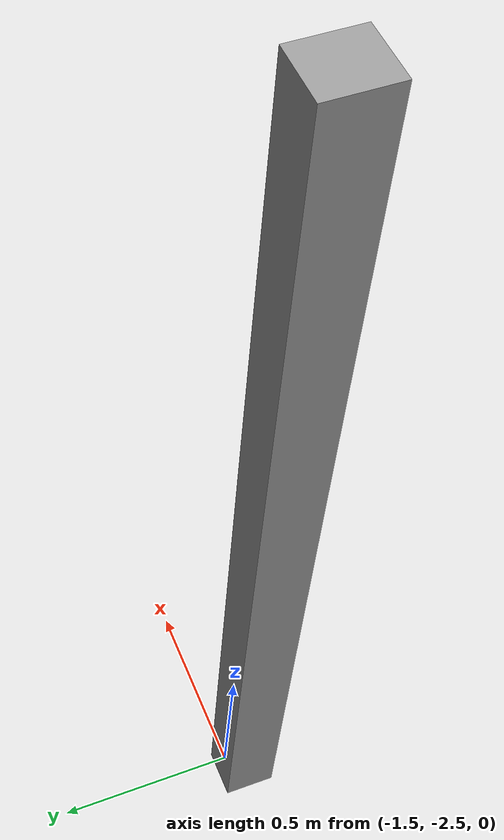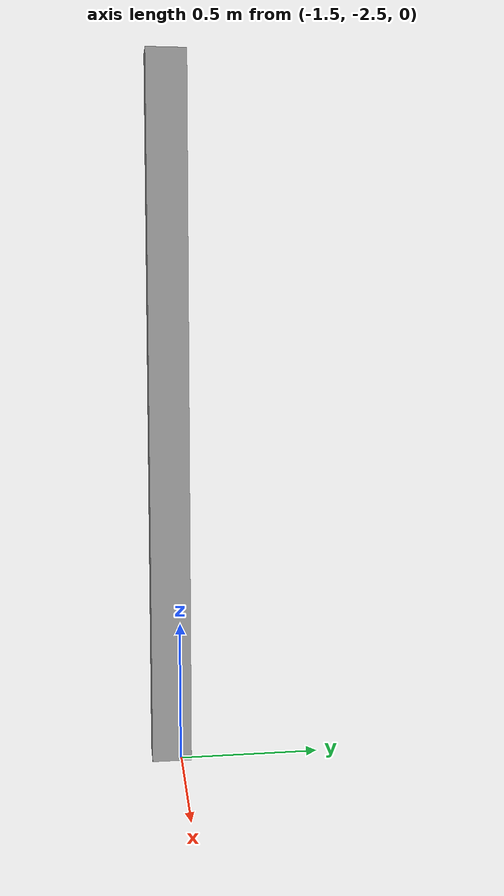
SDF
<?xml version='1.0'?>
<sdf version='1.7'>
  <model name='pole'>
    <pose>-0.8025 -1.3025 0 0 -0 0</pose>
    <link name='Wall_0'>
      <collision name='Wall_0_Collision'>
        <geometry>
          <box>
            <size>0.14 0.13 2.5</size>
          </box>
        </geometry>
        <pose>0 0 1.25 0 -0 0</pose>
      </collision>
      <visual name='Wall_0_Visual'>
        <pose>0 0 1.25 0 -0 0</pose>
        <geometry>
          <box>
            <size>0.14 0.13 2.5</size>
          </box>
        </geometry>
        <material>
          <script>
            <uri>file://media/materials/scripts/gazebo.material</uri>
            <name>Gazebo/Grey</name>
          </script>
          <ambient>0.180392 0.203922 0.211765 1</ambient>
        </material>
        <meta>
          <layer>0</layer>
        </meta>
      </visual>
      <pose>-0.7375 -1.2325 0 0 -0 1.5708</pose>
    </link>
    <static>1</static>
  </model>
</sdf>
